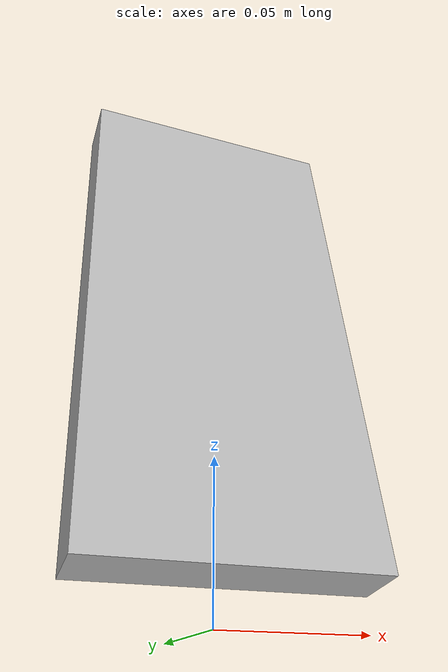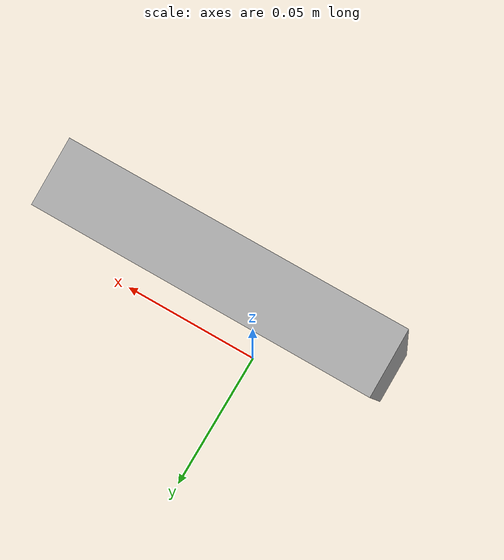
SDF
<?xml version="1.0" ?>

<sdf version="1.6">
  <model name="QEV2_IMU">
    <link name="imu_base">
    <sensor type="imu" name="sensor">
      <pose>0.09 0.045 0.009 0 0 0</pose>
      <always_on>1</always_on>
      <visualize>false</visualize>
      <update_rate>30</update_rate>
      <plugin name="qev2_imu_plugin" filename="/home/nick-pc-ubuntu/catkin_ws/src/qutms_autonomous/libgazebo_plugins/libgazebo_ros_imu_sensor.so">
      <topicName>imu_data</topicName>
      <robotNamespace>QEV2_imu</robotNamespace>
      <bodyName>imu_frame</bodyName>
      <xyzOffset>0 0 0</xyzOffset>
      <rpyOffset>0 0 0</rpyOffset>
      <updateRateHZ>30</updateRateHZ>
      <frameName>imu_frame</frameName>
    <imu>
      <orientation_reference_frame>
        <localization>CUSTOM</localization>
        <custom_rpy>0 0 0</custom_rpy>
	<parent_frame></parent_frame>
      </orientation_reference_frame>
	<angular_velocity>
	  <x>
	    <noise type="gaussian">
	      <mean>1</mean>
	      <stddev>1</stddev>
	    </noise>
	  </x>
	  <y>
	    <noise type="gaussian">
	      <mean>1</mean>
	      <stddev>1</stddev>
	    </noise>
	  </y>
	  <z>
	    <noise type="gaussian">
	      <mean>1</mean>
	      <stddev>1</stddev>
	    </noise>
	  </z>
	</angular_velocity>
	<linear_acceleration>
	  <x>
	    <noise type="gaussian">
	      <mean>1</mean>
	      <stddev>1</stddev>
	    </noise>
	  </x>
	  <y>
	    <noise type="gaussian">
	      <mean>1</mean>
	      <stddev>1</stddev>
	    </noise>
	  </y>
	  <z>
	    <noise type="gaussian">
	      <mean>1</mean>
	      <stddev>1</stddev>
	    </noise>
	  </z>
	</linear_acceleration>
      </imu>
    </plugin>
    </sensor>
    <pose>0 0 0.1 0 1.7507 1.5707</pose>
      <inertial>
	<mass>0.385</mass>
	  <inertia>
	    <ixx>0.00000008608</ixx>
	    <iyy>0.00000033679</iyy>
	    <izz>0.00000860809</izz>
	    <ixy>0</ixy>
	    <ixz>0</ixz>
	    <iyz>0</iyz>
	  </inertia>
      </inertial>
    <collision name="collision">
      <geometry>
	<box>
	  <size>0.18 0.091 0.018</size>
	</box>
      </geometry>
    </collision>
    <visual name="visual">
      <geometry>
	<box>
	  <size>0.18 0.091 0.018</size>
	</box>
      </geometry>
    </visual>
    </link>

  </model>
</sdf>
